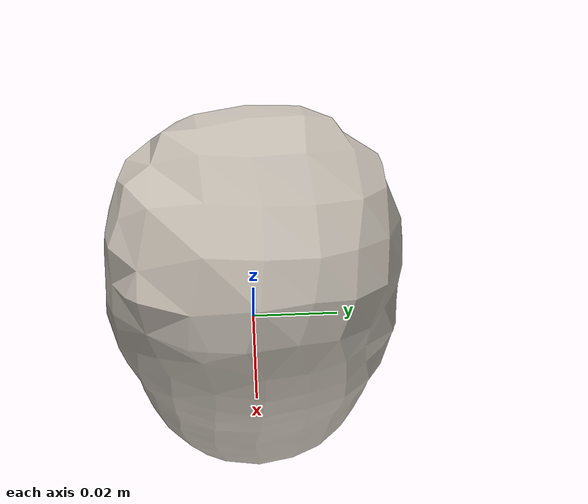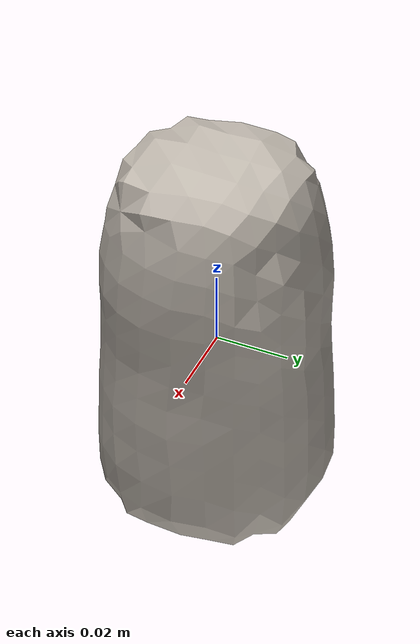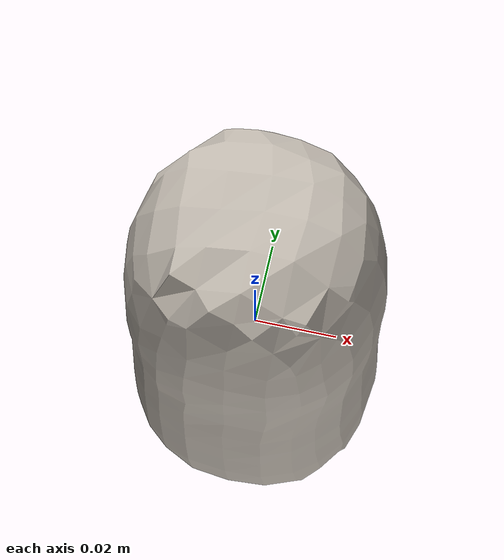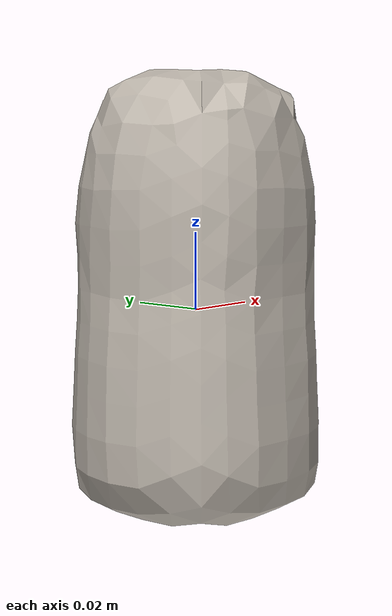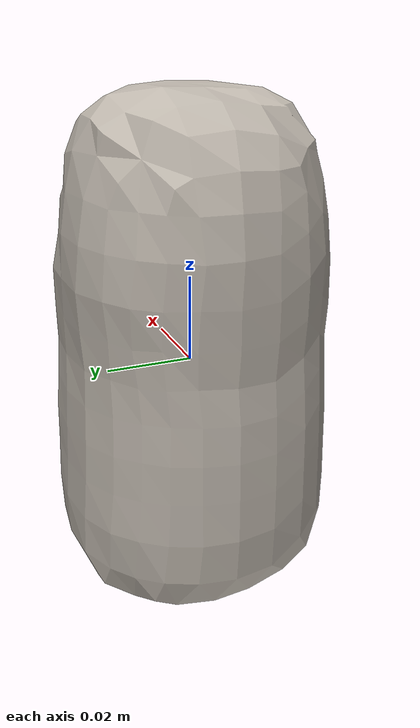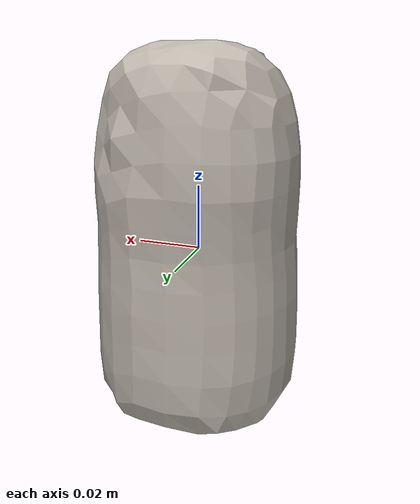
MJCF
<mujoco model="bottle_frl_apartment_kitchen_utensil_09_M">
  <asset>
    <mesh file="meshes/bottle_frl_apartment_kitchen_utensil_09_M.stl" name="bottle_mesh" scale="0.47561814395931346 0.47561814395931346 0.47561814395931346"/>
    <texture type="cube" file="/home/jbw/Projects/gc-reorientation/bin_env/assets/textures/ceramic.png" rgb1="1 1 1" name="tex-bottle"/>
    <material name="bottle" reflectance="0.5" texrepeat="3 3" texture="tex-bottle"/>
  </asset>
  <worldbody>
    <body>
      <body name="object">
        <geom pos="4.748465962003768e-07 -2.292463688409916e-05 0" quat="1 0 0 0" mesh="bottle_mesh" type="mesh" solref="0.02 1" density="1.92" friction="0.6 0.6 0.6" material="bottle" group="0" condim="4"/>
      </body>
      <site rgba="0 0 0 0" size="0.005" pos="0 0 -0.05" name="bottom_site"/>
      <site rgba="0 0 0 0" size="0.005" pos="0 0 0.03" name="top_site"/>
      <site rgba="0 0 0 0" size="0.005" pos="0.02 0.015 0" name="horizontal_radius_site"/>
    </body>
  </worldbody>
</mujoco>
